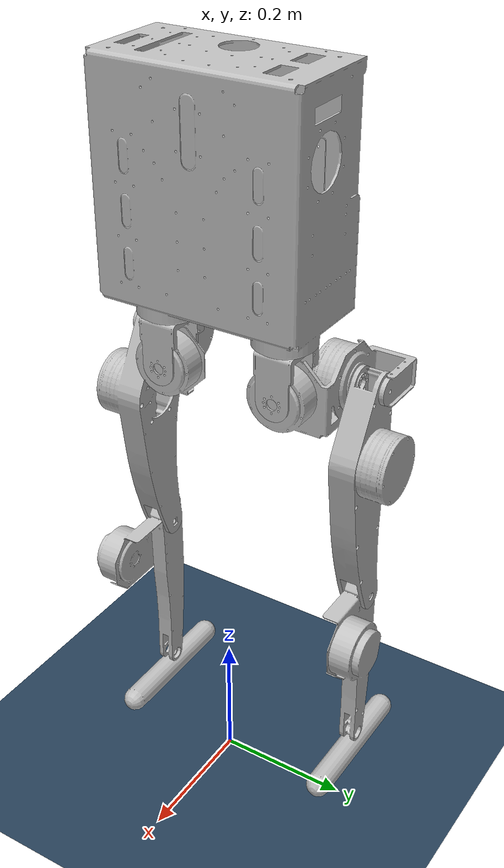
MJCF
<mujoco model="scene">
  <option timestep="0.005"/>
  <include file="meshes/mevita_long_mujoco.xml"/>

  <visual>
    <headlight diffuse="0.6 0.6 0.6"  ambient="0.3 0.3 0.3" specular="0 0 0"/>
    <rgba haze="0.15 0.25 0.35 1"/>
    <global azimuth="120" elevation="-20"/>
  </visual>

  <asset>
    <texture type="skybox" builtin="gradient" rgb1="0.3 0.5 0.7" rgb2="0 0 0" width="512"
        height="3072"/>
    <texture type="2d" name="groundplane" builtin="checker" mark="edge" rgb1="0.2 0.3 0.4"
        rgb2="0.1 0.2 0.3" markrgb="0.8 0.8 0.8" width="300" height="300"/>
    <material name="groundplane" texture="groundplane" texuniform="true" texrepeat="5 5"
        reflectance="0.2"/>
  </asset>

  <worldbody>
    <light pos="0 0 1.5" dir="0 0 -1" directional="true"/>
    <geom name="floor" pos="0 0 0.0" size="0 0 0.05" type="plane" material="groundplane"/>

    <!-- box object -->
  </worldbody>

  <actuator>
    <general name="R_hip_y"     joint="R_hip_y"   ctrllimited="true" ctrlrange="-25 25" biastype="none"/>
    <general name="R_hip_r"     joint="R_hip_r"   ctrllimited="true" ctrlrange="-25 25" biastype="none"/>
    <general name="R_hip_p"     joint="R_hip_p"   ctrllimited="true" ctrlrange="-48 48" biastype="none"/>
    <general name="R_knee_p"    joint="R_knee_p"  ctrllimited="true" ctrlrange="-48 48" biastype="none"/>
    <general name="R_ankle_p"   joint="R_ankle_p" ctrllimited="true" ctrlrange="-25 25" biastype="none"/>
    <general name="L_hip_y"     joint="L_hip_y"   ctrllimited="true" ctrlrange="-25 25" biastype="none"/>
    <general name="L_hip_r"     joint="L_hip_r"   ctrllimited="true" ctrlrange="-25 25" biastype="none"/>
    <general name="L_hip_p"     joint="L_hip_p"   ctrllimited="true" ctrlrange="-48 48" biastype="none"/>
    <general name="L_knee_p"    joint="L_knee_p"  ctrllimited="true" ctrlrange="-48 48" biastype="none"/>
    <general name="L_ankle_p"   joint="L_ankle_p" ctrllimited="true" ctrlrange="-25 25" biastype="none"/>
  </actuator>

  <sensor>
    <gyro name="body_gyro_sensor" site="base_link"/>
    <accelerometer name="body_acc_sensor" site="base_link"/>
    <velocimeter name="body_vel_sensor" site="base_link"/>
    <framequat name="body_quat_sensor" objtype="site" objname="base_link"/>
  </sensor>

  <keyframe>
    <key name="STANDBY"
      qpos="0.0 0.0 0.075 0.707 0.0 0.707 0.0
            0 0 -3.14 2.7 -1.3 0 0 -3.14 2.7 -1.3"
      ctrl="0 0 0 0 0 0 0 0 0 0" />
  </keyframe>

  <contact>
    <exclude body1="base_link"      body2="R_hip1_link"/>
    <exclude body1="R_hip1_link"    body2="R_hip2_link"/>
    <exclude body1="R_hip2_link"    body2="R_thigh_link"/>
    <exclude body1="R_thigh_link"   body2="R_calf_link"/>
    <exclude body1="R_calf_link"    body2="R_foot_link"/>
    <exclude body1="base_link"      body2="L_hip1_link"/>
    <exclude body1="L_hip1_link"    body2="L_hip2_link"/>
    <exclude body1="L_hip2_link"    body2="L_thigh_link"/>
    <exclude body1="L_thigh_link"   body2="L_calf_link"/>
    <exclude body1="L_calf_link"    body2="L_foot_link"/>
  </contact>

</mujoco>

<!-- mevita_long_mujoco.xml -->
<mujoco model="mevita">
  <compiler angle="radian"/>

  <asset>
    <mesh name="base_link"    file="meshes/base_link.STL"/>
    <mesh name="R_hip1_link"  file="meshes/R_hip1_link.STL"/>
    <mesh name="R_hip2_link"  file="meshes/R_hip2_link.STL"/>
    <mesh name="R_thigh_link" file="meshes/R_thigh_link.STL"/>
    <mesh name="R_calf_link"  file="meshes/R_calf_link.STL"/>
    <mesh name="R_foot_link"  file="meshes/R_foot_long_link.STL"/>
    <mesh name="L_hip1_link"  file="meshes/L_hip1_link.STL"/>
    <mesh name="L_hip2_link"  file="meshes/L_hip2_link.STL"/>
    <mesh name="L_thigh_link" file="meshes/L_thigh_link.STL"/>
    <mesh name="L_calf_link"  file="meshes/L_calf_link.STL"/>
    <mesh name="L_foot_link"  file="meshes/L_foot_long_link.STL"/>
  </asset>

  <worldbody>
    <body name="base_link" pos="0.0 0.0 0.953">
      <inertial pos="0.00928612 0.0 -0.0205788" quat="0.999988 -0.00483306 0.000392882 0.000118328" mass="8.0958" diaginertia="0.0584398 0.0379003 0.0334282"/>
      <joint name="base_joint" type="free" limited="false" actuatorfrclimited="false"/>
      <geom name="base_link" type="mesh" rgba="0.752941 0.752941 0.752941 1" mesh="base_link"/>
      <site name="base_link"/>
      <body name="R_hip1_link" pos="0 -0.091 -0.19905">
        <inertial pos="-0.011628 2.24199e-05 -0.0324188" quat="0.676779 -0.204837 -0.204831 0.676798" mass="0.195652" diaginertia="0.000168931 0.000147288 8.42578e-05"/>
        <joint name="R_hip_y" pos="0 0 0" axis="0 0 1" range="-1.0472 1.0472" actuatorfrcrange="-25 25" armature="4.14e-3"/>
        <geom name="R_hip1_link" type="mesh" rgba="0.752941 0.752941 0.752941 1" mesh="R_hip1_link"/>
        <body name="R_hip2_link" pos="0.028 0 -0.071">
          <inertial pos="-0.0848242 -0.0330786 -0.00239928" quat="0.348132 0.434935 0.644932 0.523162" mass="2.06273" diaginertia="0.00271558 0.00225942 0.00179094"/>
          <joint name="R_hip_r" pos="0 0 0" axis="1 0 0" range="-0.4538 0.4538" actuatorfrcrange="-25 25" armature="4.14e-3"/>
          <geom name="R_hip2_link" type="mesh" rgba="0.752941 0.752941 0.752941 1" mesh="R_hip2_link"/>
          <body name="R_thigh_link" pos="-0.11155 -0.0665 0">
            <inertial pos="0.0217259 -0.0386182 -0.127458" quat="0.706871 -0.00448149 -0.00410889 0.707316" mass="2.02695" diaginertia="0.0109864 0.00986959 0.00152478"/>
            <joint name="R_hip_p" pos="0 0 0" axis="0 1 0" range="-3.1416 0.733" actuatorfrcrange="-48 48" armature="8.12e-3"/>
            <geom name="R_thigh_link" type="mesh" rgba="0.752941 0.752941 0.752941 1" mesh="R_thigh_link"/>
            <body name="R_calf_link" pos="0 -0.007 -0.35">
              <inertial pos="0.0388671 -0.0275443 -0.0744041" quat="0.709839 0.0115854 0.0155059 0.704098" mass="1.32255" diaginertia="0.00558024 0.00518984 0.000615996"/>
              <joint name="R_knee_p" pos="0 0 0" axis="0 1 0" range="-0.349 2.7925" actuatorfrcrange="-48 48" armature="8.12e-3"/>
              <geom name="R_calf_link" type="mesh" rgba="0.752941 0.752941 0.752941 1" mesh="R_calf_link"/>
              <body name="R_foot_link" pos="0 0.0055 -0.281417">
                <inertial pos="-0.0008057 -0.0189472 -0.0237548" quat="-3.75185e-05 0.709078 -3.77286e-05 0.70513" mass="0.214661" diaginertia="0.000787298 0.000770003 4.02329e-05"/>
                <joint name="R_ankle_p" pos="0 0 0" axis="0 1 0" range="-1.2217 1.0123" actuatorfrcrange="-25 25" armature="4.14e-3"/>
                <geom name="R_foot_link" type="capsule" rgba="0.752941 0.752941 0.752941 1" size="0.01916 0.104" pos="0.0 -0.01916 -0.03141" quat="0 0.706825 0 0.707388"/>
              </body>
            </body>
          </body>
        </body>
      </body>
      <body name="L_hip1_link" pos="0 0.091 -0.19905">
        <inertial pos="-0.011628 2.24199e-05 -0.0324188" quat="0.676779 -0.204837 -0.204831 0.676798" mass="0.195652" diaginertia="0.000168931 0.000147288 8.42578e-05"/>
        <joint name="L_hip_y" pos="0 0 0" axis="0 0 1" range="-1.0472 1.0472" actuatorfrcrange="-25 25" armature="4.14e-3"/>
        <geom name="L_hip1_link" type="mesh" rgba="0.752941 0.752941 0.752941 1" mesh="L_hip1_link"/>
        <body name="L_hip2_link" pos="0.028 0 -0.071">
          <inertial pos="-0.0848242 0.033044 -0.00243198" quat="0.521602 0.645715 0.436638 0.346888" mass="2.06273" diaginertia="0.002714 0.00226095 0.001791"/>
          <joint name="L_hip_r" pos="0 0 0" axis="1 0 0" range="-0.4538 0.4538" actuatorfrcrange="-25 25" armature="4.14e-3"/>
          <geom name="L_hip2_link" type="mesh" rgba="0.752941 0.752941 0.752941 1" mesh="L_hip2_link"/>
          <body name="L_thigh_link" pos="-0.11155 0.0665 0">
            <inertial pos="0.0217097 0.0386182 -0.12743" quat="0.707288 -0.00406213 -0.00444652 0.7069" mass="2.02695" diaginertia="0.0109864 0.00987117 0.0015232"/>
            <joint name="L_hip_p" pos="0 0 0" axis="0 1 0" range="-3.1416 0.733" actuatorfrcrange="-48 48" armature="8.12e-3"/>
            <geom name="L_thigh_link" type="mesh" rgba="0.752941 0.752941 0.752941 1" mesh="L_thigh_link"/>
            <body name="L_calf_link" pos="0 0.007 -0.35">
              <inertial pos="0.0388984 0.0275443 -0.074354" quat="0.703314 0.0153454 0.0116081 0.710619" mass="1.32255" diaginertia="0.00558024 0.0051913 0.000614532"/>
              <joint name="L_knee_p" pos="0 0 0" axis="0 1 0" range="-0.349 2.7925" actuatorfrcrange="-48 48" armature="8.12e-3"/>
              <geom name="L_calf_link" type="mesh" rgba="0.752941 0.752941 0.752941 1" mesh="L_calf_link"/>
              <body name="L_foot_link" pos="0 -0.0055 -0.281417">
                <inertial pos="-0.0008057 0.0189472 -0.0237548" quat="-3.75185e-05 0.709078 -3.77286e-05 0.70513" mass="0.214661" diaginertia="0.000787298 0.000770003 4.02329e-05"/>
                <joint name="L_ankle_p" pos="0 0 0" axis="0 1 0" range="-1.2217 1.0123" actuatorfrcrange="-25 25" armature="4.14e-3"/>
                <geom name="L_foot_link" type="capsule" rgba="0.752941 0.752941 0.752941 1" size="0.01916 0.104" pos="0.0 0.01916 -0.03141" quat="0 0.706825 0 0.707388"/>
              </body>
            </body>
          </body>
        </body>
      </body>
    </body>
  </worldbody>
</mujoco>
